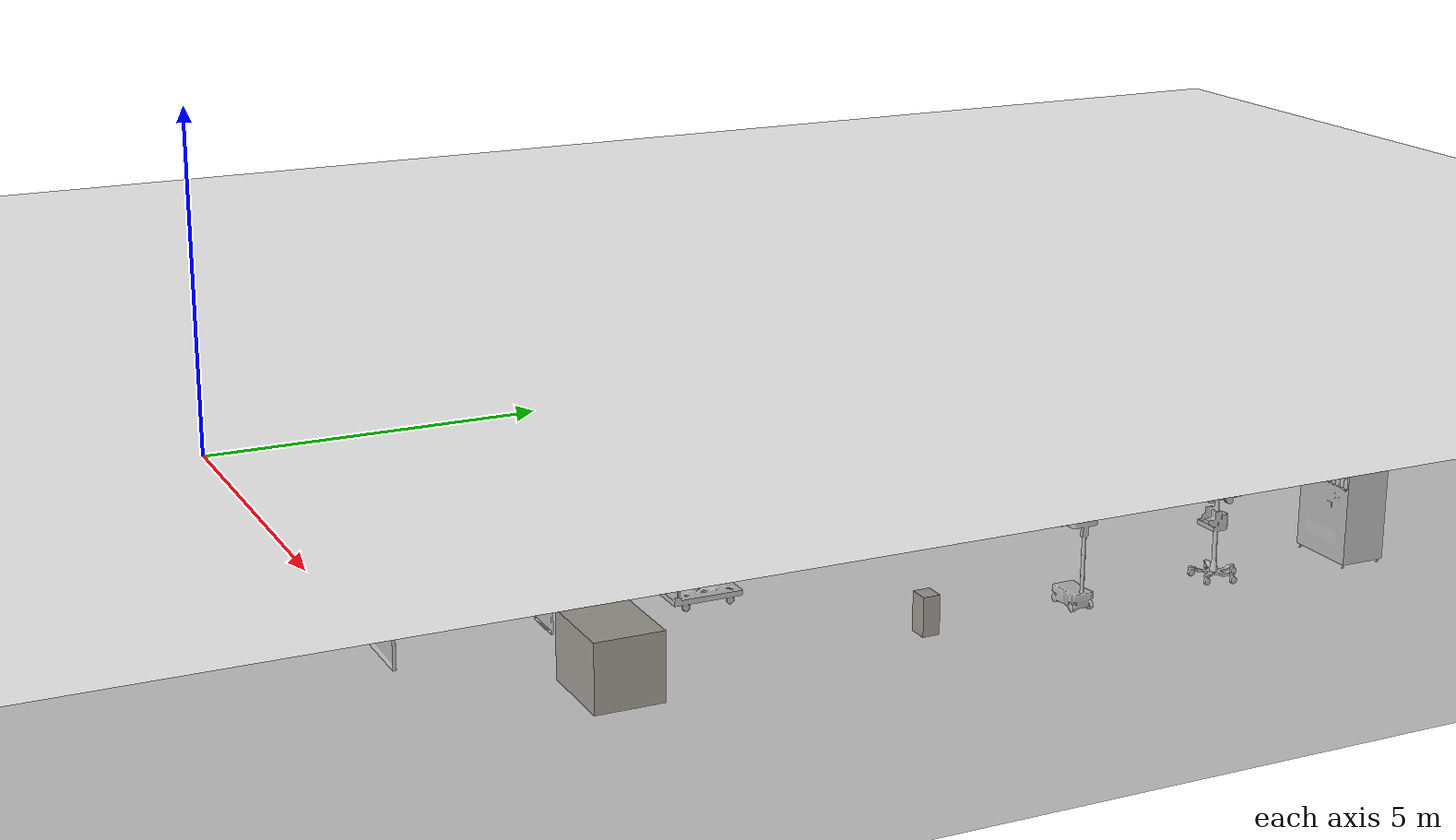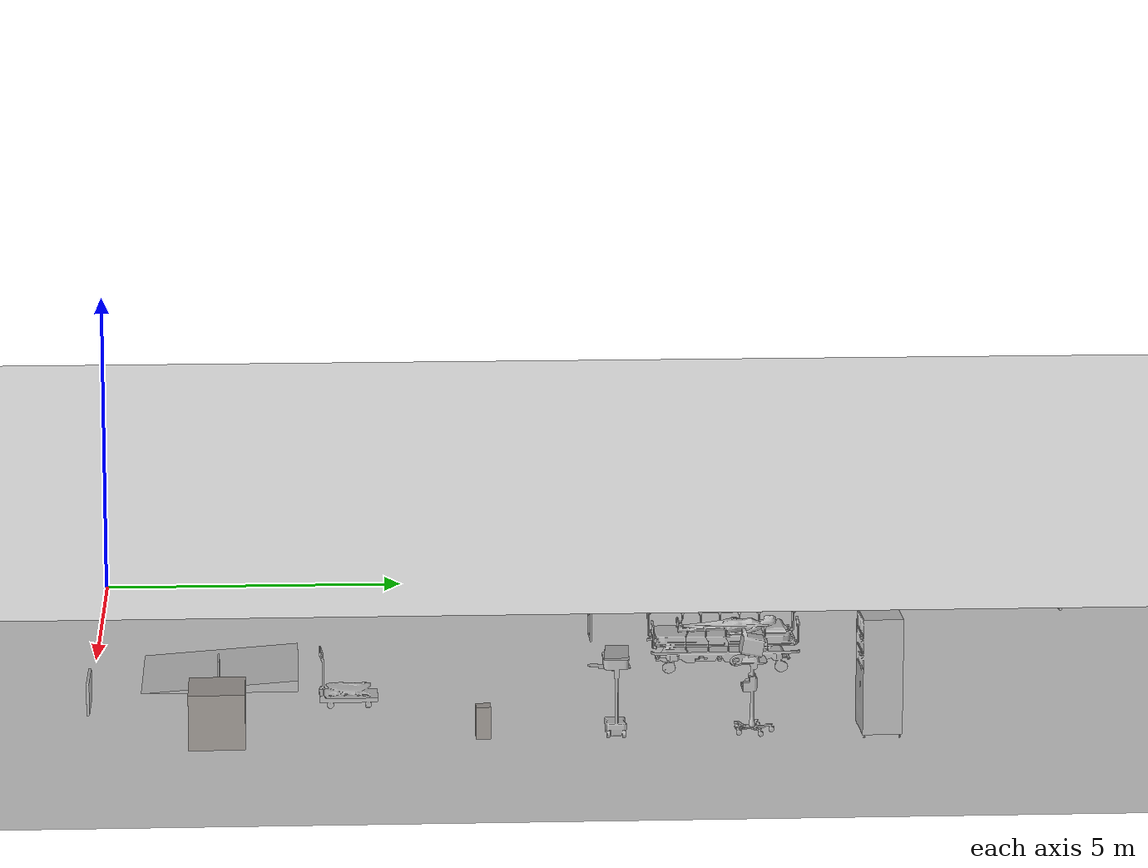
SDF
<sdf version="1.6">
 <world name="fuel_models">
  <plugin filename="gz-sim-physics-system" name="gz::sim::systems::Physics"/>
  <plugin filename="gz-sim-sensors-system" name="gz::sim::systems::Sensors">
   <render_engine>ogre2</render_engine>
   <background_color>0.8 0.8 0.8</background_color>
  </plugin>
  <plugin filename="gz-sim-scene-broadcaster-system" name="gz::sim::systems::SceneBroadcaster"/>
  <plugin filename="gz-sim-user-commands-system" name="gz::sim::systems::UserCommands"/>
  <plugin filename="gz-sim-imu-system" name="gz::sim::systems::Imu"/>
  <scene><ambient>0.6 0.6 0.6 1</ambient><background>0.4 0.4 0.4 1</background><shadows>false</shadows></scene>
  <include><uri>model://Sun</uri><static>true</static><pose>0 0 10 0 0 0</pose></include>
  <model name="GroundPlane_1"><include><uri>model://Ground Plane</uri><static>true</static></include></model>
  <model name="CGMClassic_1"><include><uri>model://CGMClassic</uri><static>true</static></include></model>
  <model name="Scrubs_1">
   <include><uri>model://Scrubs</uri><static>true</static><pose>0 6 0 0 0 0</pose></include>
  </model>
  <model name="PatientWheelChair_1">
   <include><uri>model://PatientWheelChair</uri><static>true</static><pose>0 8 0 0 0 0</pose></include>
  </model>
  <model name="aws_robomaker_residential_PortraitA_01_1">
   <include>
    <uri>model://aws_robomaker_residential_PortraitA_01</uri>
    <static>true</static>
    <pose>2 14 0 0 0 0</pose>
   </include>
  </model>
  <model name="aws_robomaker_residential_PortraitD_02_1">
   <include>
    <uri>model://aws_robomaker_residential_PortraitD_02</uri>
    <static>true</static>
    <pose>2 16 0 0 0 0</pose>
   </include>
  </model>
  <model name="aws_robomaker_residential_PortraitE_01_1">
   <include>
    <uri>model://aws_robomaker_residential_PortraitE_01</uri>
    <static>true</static>
    <pose>4 8 0 0 0 0</pose>
   </include>
  </model>
  <model name="aws_robomaker_hospital_floor_01_ceiling_1">
   <include>
    <uri>models://aws_robomaker_hospital_floor_01_ceiling</uri>
    <static>true</static>
    <pose>6 0 0 0 0 0</pose>
   </include>
  </model>
  <model name="aws_robomaker_hospital_ramp_01_1">
   <include>
    <uri>models://aws_robomaker_hospital_ramp_01</uri>
    <static>true</static>
    <pose>6 2 0 0 0 0</pose>
   </include>
  </model>
  <model name="TrolleyBedPatient_1">
   <include><uri>model://TrolleyBedPatient</uri><static>true</static><pose>6 10 0 0 0 0</pose></include>
  </model>
  <model name="aws_robomaker_residential_PortraitD_01_1">
   <include>
    <uri>model://aws_robomaker_residential_PortraitD_01</uri>
    <static>true</static>
    <pose>8 0 0 0 0 0</pose>
   </include>
  </model>
  <model name="aws_robomaker_residential_PortraitE_02_1">
   <include>
    <uri>model://aws_robomaker_residential_PortraitE_02</uri>
    <static>true</static>
    <pose>8 2 0 0 0 0</pose>
   </include>
  </model>
  <model name="ParkingTrolleyMin_1">
   <include><uri>model://ParkingTrolleyMin</uri><static>true</static><pose>8 4 0 0 0 0</pose></include>
  </model>
  <model name="XRayMachine_1">
   <include><uri>model://XRayMachine</uri><static>true</static><pose>10 2 0 0 0 0</pose></include>
  </model>
  <model name="BloodPressureMonitor_1">
   <include><uri>model://BloodPressureMonitor</uri><static>true</static><pose>10 6 0 0 0 0</pose></include>
  </model>
  <model name="BMWCart_1">
   <include><uri>model://BMWCart</uri><static>true</static><pose>10 8 0 0 0 0</pose></include>
  </model>
  <model name="BPCart_1">
   <include><uri>model://BPCart</uri><static>true</static><pose>10 10 0 0 0 0</pose></include>
  </model>
  <model name="VendingMachine_1">
   <include><uri>model://VendingMachine</uri><static>true</static><pose>10 12 0 0 0 0</pose></include>
  </model>
 </world>
</sdf>

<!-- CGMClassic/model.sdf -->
<sdf version="1.6">
  <model name="CGMClassic">
   <static>true</static>
    <link name="body">
      <pose>0 0 0 0 0 0</pose>

      <visual name="visual">
        <geometry>
          <mesh>
            <uri>model://CGMClassic/meshes/CGMClassic.obj</uri>
            <scale>0.01 0.01 0.01</scale>
          </mesh>
        </geometry>
      </visual>

      <collision name="collision">
        <geometry>
          <mesh>
            <uri>model://CGMClassic/meshes/CGMClassic.obj</uri>
            <scale>0.01 0.01 0.01</scale>
          </mesh>
        </geometry>
      </collision>

    </link>
  </model>
</sdf>

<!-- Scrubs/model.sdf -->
<sdf version="1.6">
  <model name='Scrubs'>
   <static>true</static>
    <link name="body">
      <pose>0 0 0 0 0 0</pose>

      <visual name="visual">
        <geometry>
          <mesh>
            <uri>model://Scrubs/meshes/scrubs.obj</uri>
          </mesh>
        </geometry>
      </visual>

      <collision name="collision">
        <geometry>
          <mesh>
            <uri>model://Scrubs/meshes/Scrubs_Col.obj</uri>
          </mesh>
        </geometry>
      </collision>

    </link>
  </model>
</sdf>

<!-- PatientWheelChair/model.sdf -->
<sdf version="1.6">
  <model name="PatientWheelChair">
   <static>true</static>
    <link name="body">
      <pose>0 0 0 0 0 0</pose>

      <visual name="visual">
        <geometry>
          <mesh>
            <uri>model://PatientWheelChair/meshes/PatientWheelChair.obj</uri>
          </mesh>
        </geometry>
      </visual>

      <collision name="collision">
        <geometry>
          <mesh>
            <uri>model://PatientWheelChair/meshes/PatientWheelChair_Col.obj</uri>
          </mesh>
        </geometry>
      </collision>

    </link>
  </model>
</sdf>

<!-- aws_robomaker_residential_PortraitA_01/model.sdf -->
<sdf version="1.6">
  <model name="aws_robomaker_residential_PortraitA_01">
    <link name="link">
      <inertial>
        <mass>1</mass>
      </inertial>
      <collision name="collision">
        <geometry>
          <mesh>
            <uri>model://aws_robomaker_residential_PortraitA_01/meshes/aws_PortraitA_01_collision.DAE</uri>
            <scale>1 1 1</scale>
          </mesh>
        </geometry>
      </collision>
      <visual name="visual">
        <geometry>
          <mesh>
            <uri>model://aws_robomaker_residential_PortraitA_01/meshes/aws_PortraitA_01_visual.DAE</uri>
          </mesh>
        </geometry>
        <meta>
          <layer> 2 </layer>
        </meta>
      </visual>
    </link>
    <static>1</static>
  </model>
</sdf>

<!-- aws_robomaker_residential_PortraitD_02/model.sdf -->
<sdf version="1.6">
  <model name="aws_robomaker_residential_PortraitD_02">
    <link name="link">
      <inertial>
        <mass>1.5</mass>
      </inertial>
      <collision name="collision">
        <geometry>
          <mesh>
            <uri>model://aws_robomaker_residential_PortraitD_02/meshes/aws_PortraitD_01_collision.DAE</uri>
            <scale>1 1 1</scale>
          </mesh>
        </geometry>
      </collision>
      <visual name="visual">
        <geometry>
          <mesh>
            <uri>model://aws_robomaker_residential_PortraitD_02/meshes/aws_PortraitD_01_visual.DAE</uri>
          </mesh>
        </geometry>
        <meta>
          <layer> 2 </layer>
        </meta>
      </visual>
    </link>
    <static>1</static>
  </model>
</sdf>

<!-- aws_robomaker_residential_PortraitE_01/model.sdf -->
<sdf version="1.6">
  <model name="aws_robomaker_residential_PortraitE_01">
    <link name="link">
      <inertial>
        <mass>1</mass>
      </inertial>
      <collision name="collision">
        <geometry>
          <mesh>
            <uri>model://aws_robomaker_residential_PortraitE_01/meshes/aws_PortraitE_01_collision.DAE</uri>
            <scale>1 1 1</scale>
          </mesh>
        </geometry>
      </collision>
      <visual name="visual">
        <geometry>
          <mesh>
            <uri>model://aws_robomaker_residential_PortraitE_01/meshes/aws_PortraitE_01_visual.DAE</uri>
          </mesh>
        </geometry>
        <meta>
          <layer> 2 </layer>
        </meta>
      </visual>
    </link>
    <static>1</static>
  </model>
</sdf>

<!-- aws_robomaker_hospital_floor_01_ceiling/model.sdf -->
<sdf version="1.6">
  <model name="aws_robomaker_hospital_floor_01_ceiling">
    <link name="link">
      <visual name="visual">
        <geometry>
          <mesh>
            <uri>model://aws_robomaker_hospital_floor_01_ceiling/meshes/aws_robomaker_hospital_floor_01_ceiling_visual.dae</uri>
          </mesh>
        </geometry>
        <material>
          <diffuse>1 1 1</diffuse>
          <specular>1 1 1</specular>
          <pbr>
            <metal>
              <albedo_map>model://aws_robomaker_hospital_floor_01_ceiling/meshes/aws_robomaker_hospital_floor_01_ceiling.png</albedo_map>
              <normal_map>model://aws_robomaker_hospital_floor_01_ceiling/meshes/aws_robomaker_hospital_floor_01_ceiling_normal.png</normal_map>
            </metal>
          </pbr>
        </material>
      </visual>
      <collision name="collision">
        <geometry>
          <mesh>
            <uri>model://aws_robomaker_hospital_floor_01_ceiling/meshes/aws_robomaker_hospital_floor_01_ceiling_collision.dae</uri>
          </mesh>
        </geometry>
      </collision>
    </link>
    <static>1</static>
  </model>
</sdf>

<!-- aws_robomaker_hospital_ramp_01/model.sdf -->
<sdf version="1.6">
  <model name="aws_robomaker_hospital_ramp_01">
    <link name="link">
      <visual name="visual">
        <geometry>
          <mesh>
            <uri>model://aws_robomaker_hospital_ramp_01/meshes/aws_robomaker_hospital_ramp_01_visual.dae</uri>
          </mesh>
        </geometry>
      </visual>
      <collision name="collision">
        <geometry>
          <mesh>
            <uri>model://aws_robomaker_hospital_ramp_01/meshes/aws_robomaker_hospital_ramp_01_collision.dae</uri>
          </mesh>
        </geometry>
      </collision>
    </link>
    <static>1</static>
  </model>
</sdf>

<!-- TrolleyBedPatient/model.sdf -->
<sdf version="1.6">
  <model name="TrolleyBedPatient">
   <static>true</static>
    <link name="body">
      <pose>0 0 0 0 0 0</pose>

      <visual name="visual">
        <geometry>
          <mesh>
            <uri>model://TrolleyBedPatient/meshes/TrolleyBedPatient.obj</uri>
          </mesh>
        </geometry>
      </visual>

      <collision name="collision">
        <geometry>
          <mesh>
            <uri>model://TrolleyBedPatient/meshes/TrolleyBedPatient.obj</uri>
          </mesh>
        </geometry>
      </collision>

    </link>
  </model>
</sdf>

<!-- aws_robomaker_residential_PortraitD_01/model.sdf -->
<sdf version="1.6">
  <model name="aws_robomaker_residential_PortraitD_01">
    <link name="link">
      <inertial>
        <mass>1.5</mass>
      </inertial>
      <collision name="collision">
        <geometry>
          <mesh>
            <uri>model://aws_robomaker_residential_PortraitD_01/meshes/aws_PortraitD_01_collision.DAE</uri>
            <scale>1 1 1</scale>
          </mesh>
        </geometry>
      </collision>
      <visual name="visual">
        <geometry>
          <mesh>
            <uri>model://aws_robomaker_residential_PortraitD_01/meshes/aws_PortraitD_01_visual.DAE</uri>
          </mesh>
        </geometry>
        <meta>
          <layer> 2 </layer>
        </meta>
      </visual>
    </link>
    <static>1</static>
  </model>
</sdf>

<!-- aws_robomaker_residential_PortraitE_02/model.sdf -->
<sdf version="1.6">
  <model name="aws_robomaker_residential_PortraitE_02">
    <link name="link">
      <inertial>
        <mass>1</mass>
      </inertial>
      <collision name="collision">
        <geometry>
          <mesh>
            <uri>model://aws_robomaker_residential_PortraitE_02/meshes/aws_PortraitE_01_collision.DAE</uri>
            <scale>1 1 1</scale>
          </mesh>
        </geometry>
      </collision>
      <visual name="visual">
        <geometry>
          <mesh>
            <uri>model://aws_robomaker_residential_PortraitE_02/meshes/aws_PortraitE_01_visual.DAE</uri>
          </mesh>
        </geometry>
        <meta>
          <layer> 2 </layer>
        </meta>
      </visual>
    </link>
    <static>1</static>
  </model>
</sdf>

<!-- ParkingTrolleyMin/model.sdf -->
<sdf version="1.6">
  <model name="ParkingTrolleyMin">
    <link name="body">
      <pose>0 0 0 0 0 0</pose>

        <visual name="visual">
          <pose>0 0 0 0 0 0</pose>
          <geometry>
            <mesh><uri>model://ParkingTrolleyMin/meshes/trolleymin.obj</uri></mesh>
          </geometry>
        </visual>

        <collision name="collision">
          <pose>0 0 0 0 0 0</pose>
          <geometry>
            <mesh><uri>model://ParkingTrolleyMin/meshes/trolleymin.obj</uri></mesh>
          </geometry>
        </collision>

    </link>
  </model>
</sdf>

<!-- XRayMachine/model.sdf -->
<sdf version="1.6">
  <model name="XRayMachine">
    <static>true</static>
    <link name="link">
      <collision name="col">
        <geometry>
          <box>
            <size>1.1 0.85 1.65</size>
          </box>
        </geometry>
      </collision>
      <visual name="vis">
        <geometry>
          <box>
            <size>1.1 0.85 1.65</size>
          </box>
        </geometry>
        <material>
          <ambient>0.62 0.6 0.58 1</ambient>
          <diffuse>0.62 0.6 0.58 1</diffuse>
        </material>
      </visual>
    </link>
  </model>
</sdf>

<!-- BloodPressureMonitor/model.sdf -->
<sdf version="1.6">
  <model name="BloodPressureMonitor">
    <static>true</static>
    <link name="link">
      <collision name="col">
        <geometry>
          <box>
            <size>0.25 0.22 0.95</size>
          </box>
        </geometry>
      </collision>
      <visual name="vis">
        <geometry>
          <box>
            <size>0.25 0.22 0.95</size>
          </box>
        </geometry>
        <material>
          <ambient>0.62 0.6 0.58 1</ambient>
          <diffuse>0.62 0.6 0.58 1</diffuse>
        </material>
      </visual>
    </link>
  </model>
</sdf>

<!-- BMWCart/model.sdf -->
<sdf version="1.6">
  <model name='BMWCart'>
    <link name="body">
      <pose>0 0 0 0 0 0</pose>

      <visual name="visual">
        <geometry>
          <mesh>
            <uri>model://BMWCart/meshes/Cart_BMW.obj</uri>
          </mesh>
        </geometry>
      </visual>

      <collision name="collision">
        <geometry>
          <mesh>
            <uri>model://BMWCart/meshes/Cart_BMW_Col.obj</uri>
          </mesh>
        </geometry>
      </collision>

    </link>
  </model>
</sdf>

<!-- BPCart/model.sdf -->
<sdf version="1.6">
  <model name='BPCart'>
    <link name="body">
      <pose>0 0 0 0 0 0</pose>

      <visual name="visual">
        <geometry>
          <mesh>
            <uri>model://BPCart/meshes/Cart_BP.obj</uri>
          </mesh>
        </geometry>
      </visual>

      <collision name="collision">
        <geometry>
          <mesh>
            <uri>model://BPCart/meshes/Cart_BP_Col.obj</uri>
          </mesh>
        </geometry>
      </collision>

    </link>
  </model>
</sdf>

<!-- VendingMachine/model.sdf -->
<sdf version="1.6">
  <model name="VendingMachine">
    <link name="body">
      <pose>0 0 0 0 0 0</pose>

      <visual name="visual">
        <geometry>
          <mesh>
            <uri>model://VendingMachine/meshes/vend.obj</uri>
          </mesh>
        </geometry>
      </visual>

      <collision name="collision">
        <geometry>
          <mesh>
            <uri>model://VendingMachine/meshes/vend.obj</uri>
          </mesh>
        </geometry>
      </collision>

    </link>
  </model>
</sdf>
